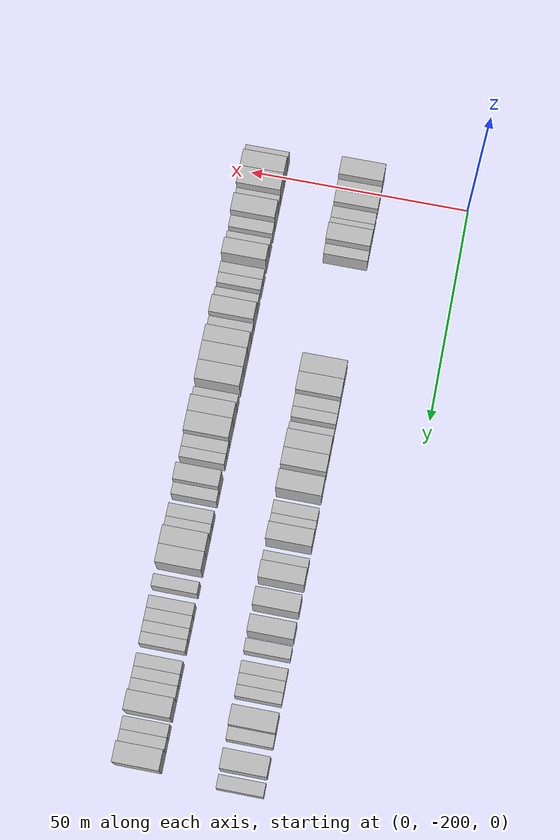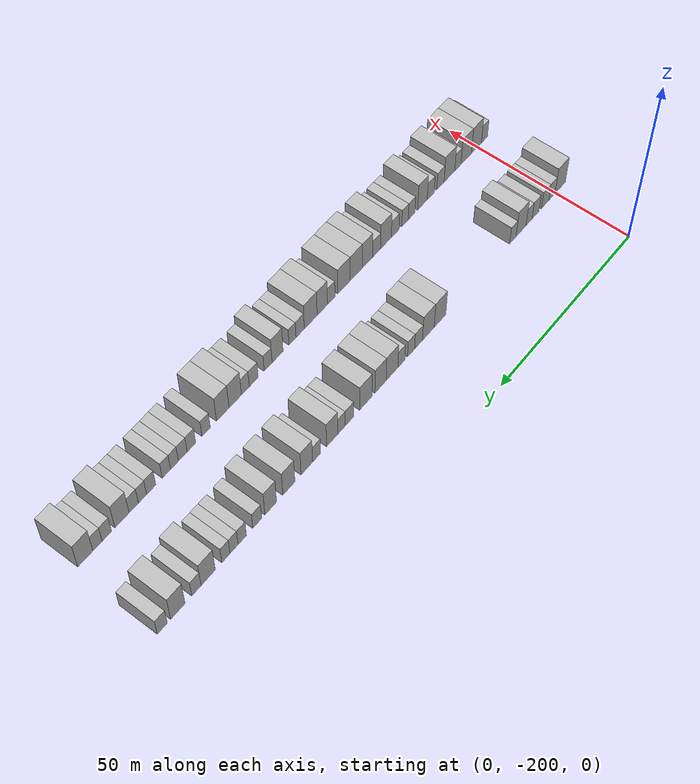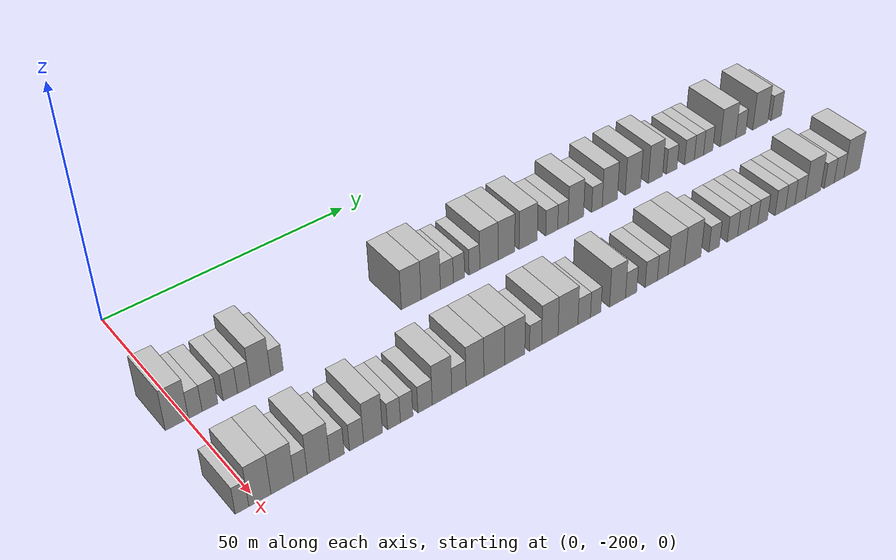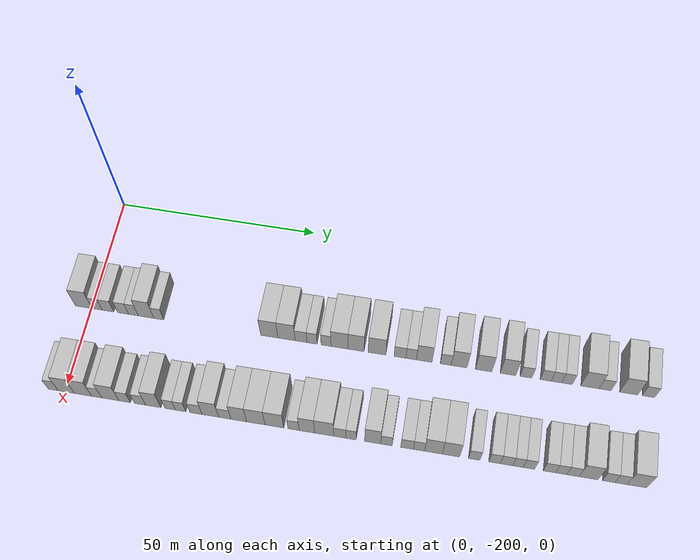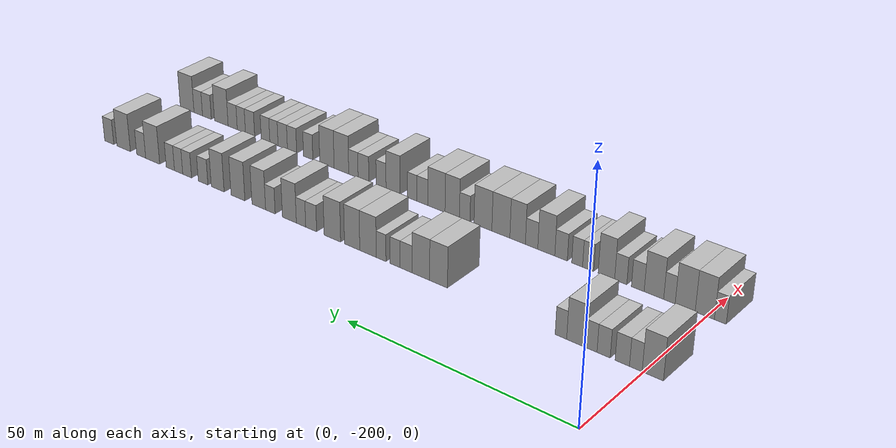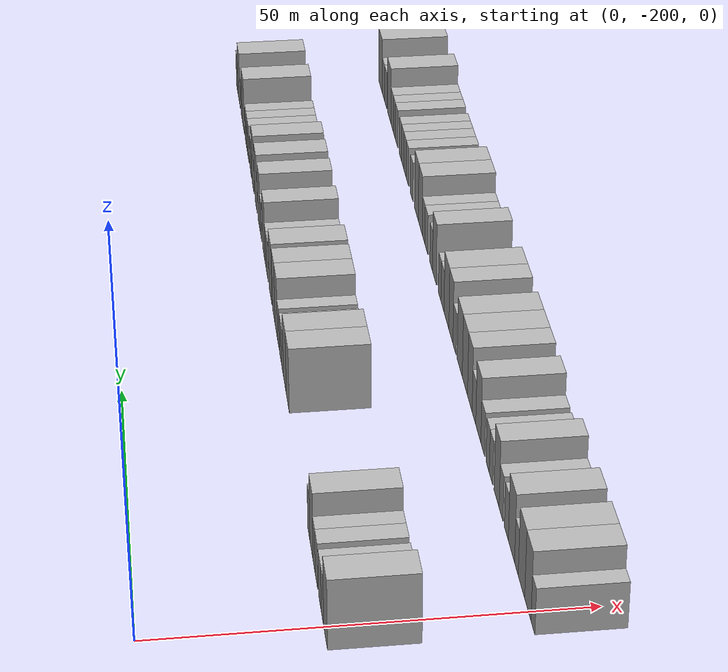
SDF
<sdf version="1.6">
 <world name="default">
  <model name="building_1">
   <static>1</static>
   <pose>25.0000 -201.8776 0 0.000000 0.000000 0.000000</pose>
   <link name="link">
    <pose>0 0 4.50 0 0 0</pose>
    <collision name="collision"><geometry><box><size>10.0000 4.2448 9.0000</size></box></geometry></collision>
    <visual name="visual">
     <cast_shadows>0</cast_shadows>
     <geometry><box><size>10.0000 4.2448 9.0000</size></box></geometry>
     <material>
      <script>
       <uri>model://HANNAS_wall/materials/scripts</uri>
       <uri>model://HANNAS_wall/materials/textures</uri>
       <name>vrc/HANNAS_wall</name>
      </script>
     </material>
    </visual>
   </link>
  </model>
  <model name="building_2">
   <static>1</static>
   <pose>25.0000 -198.4805 0 0.000000 0.000000 0.000000</pose>
   <link name="link">
    <pose>0 0 3.00 0 0 0</pose>
    <collision name="collision"><geometry><box><size>10.0000 2.5494 6.0000</size></box></geometry></collision>
    <visual name="visual">
     <cast_shadows>0</cast_shadows>
     <geometry><box><size>10.0000 2.5494 6.0000</size></box></geometry>
     <material>
      <script>
       <uri>model://HANNAS_wall/materials/scripts</uri>
       <uri>model://HANNAS_wall/materials/textures</uri>
       <name>vrc/HANNAS_wall</name>
      </script>
     </material>
    </visual>
   </link>
  </model>
  <model name="building_3">
   <static>1</static>
   <pose>25.0000 -195.7391 0 0.000000 0.000000 0.000000</pose>
   <link name="link">
    <pose>0 0 3.00 0 0 0</pose>
    <collision name="collision"><geometry><box><size>10.0000 2.9334 6.0000</size></box></geometry></collision>
    <visual name="visual">
     <cast_shadows>0</cast_shadows>
     <geometry><box><size>10.0000 2.9334 6.0000</size></box></geometry>
     <material>
      <script>
       <uri>model://HANNAS_wall/materials/scripts</uri>
       <uri>model://HANNAS_wall/materials/textures</uri>
       <name>vrc/HANNAS_wall</name>
      </script>
     </material>
    </visual>
   </link>
  </model>
  <model name="building_4">
   <static>1</static>
   <pose>25.0000 -191.9077 0 0.000000 0.000000 0.000000</pose>
   <link name="link">
    <pose>0 0 3.00 0 0 0</pose>
    <collision name="collision"><geometry><box><size>10.0000 2.7295 6.0000</size></box></geometry></collision>
    <visual name="visual">
     <cast_shadows>0</cast_shadows>
     <geometry><box><size>10.0000 2.7295 6.0000</size></box></geometry>
     <material>
      <script>
       <uri>model://HANNAS_wall/materials/scripts</uri>
       <uri>model://HANNAS_wall/materials/textures</uri>
       <name>vrc/HANNAS_wall</name>
      </script>
     </material>
    </visual>
   </link>
  </model>
  <model name="building_5">
   <static>1</static>
   <pose>25.0000 -189.3272 0 0.000000 0.000000 0.000000</pose>
   <link name="link">
    <pose>0 0 3.00 0 0 0</pose>
    <collision name="collision"><geometry><box><size>10.0000 2.4314 6.0000</size></box></geometry></collision>
    <visual name="visual">
     <cast_shadows>0</cast_shadows>
     <geometry><box><size>10.0000 2.4314 6.0000</size></box></geometry>
     <material>
      <script>
       <uri>model://HANNAS_wall/materials/scripts</uri>
       <uri>model://HANNAS_wall/materials/textures</uri>
       <name>vrc/HANNAS_wall</name>
      </script>
     </material>
    </visual>
   </link>
  </model>
  <model name="building_6">
   <static>1</static>
   <pose>25.0000 -186.1348 0 0.000000 0.000000 0.000000</pose>
   <link name="link">
    <pose>0 0 4.50 0 0 0</pose>
    <collision name="collision"><geometry><box><size>10.0000 3.9535 9.0000</size></box></geometry></collision>
    <visual name="visual">
     <cast_shadows>0</cast_shadows>
     <geometry><box><size>10.0000 3.9535 9.0000</size></box></geometry>
     <material>
      <script>
       <uri>model://HANNAS_wall/materials/scripts</uri>
       <uri>model://HANNAS_wall/materials/textures</uri>
       <name>vrc/HANNAS_wall</name>
      </script>
     </material>
    </visual>
   </link>
  </model>
  <model name="building_7">
   <static>1</static>
   <pose>25.0000 -182.9249 0 0.000000 0.000000 0.000000</pose>
   <link name="link">
    <pose>0 0 3.00 0 0 0</pose>
    <collision name="collision"><geometry><box><size>10.0000 2.4664 6.0000</size></box></geometry></collision>
    <visual name="visual">
     <cast_shadows>0</cast_shadows>
     <geometry><box><size>10.0000 2.4664 6.0000</size></box></geometry>
     <material>
      <script>
       <uri>model://HANNAS_wall/materials/scripts</uri>
       <uri>model://HANNAS_wall/materials/textures</uri>
       <name>vrc/HANNAS_wall</name>
      </script>
     </material>
    </visual>
   </link>
  </model>
  <model name="building_8">
   <static>1</static>
   <pose>25.0000 -155.2964 0 0.000000 0.000000 0.000000</pose>
   <link name="link">
    <pose>0 0 4.50 0 0 0</pose>
    <collision name="collision"><geometry><box><size>10.0000 4.2636 9.0000</size></box></geometry></collision>
    <visual name="visual">
     <cast_shadows>0</cast_shadows>
     <geometry><box><size>10.0000 4.2636 9.0000</size></box></geometry>
     <material>
      <script>
       <uri>model://HANNAS_wall/materials/scripts</uri>
       <uri>model://HANNAS_wall/materials/textures</uri>
       <name>vrc/HANNAS_wall</name>
      </script>
     </material>
    </visual>
   </link>
  </model>
  <model name="building_9">
   <static>1</static>
   <pose>25.0000 -151.0444 0 0.000000 0.000000 0.000000</pose>
   <link name="link">
    <pose>0 0 4.50 0 0 0</pose>
    <collision name="collision"><geometry><box><size>10.0000 4.2404 9.0000</size></box></geometry></collision>
    <visual name="visual">
     <cast_shadows>0</cast_shadows>
     <geometry><box><size>10.0000 4.2404 9.0000</size></box></geometry>
     <material>
      <script>
       <uri>model://HANNAS_wall/materials/scripts</uri>
       <uri>model://HANNAS_wall/materials/textures</uri>
       <name>vrc/HANNAS_wall</name>
      </script>
     </material>
    </visual>
   </link>
  </model>
  <model name="building_10">
   <static>1</static>
   <pose>25.0000 -147.4846 0 0.000000 0.000000 0.000000</pose>
   <link name="link">
    <pose>0 0 3.00 0 0 0</pose>
    <collision name="collision"><geometry><box><size>10.0000 2.8792 6.0000</size></box></geometry></collision>
    <visual name="visual">
     <cast_shadows>0</cast_shadows>
     <geometry><box><size>10.0000 2.8792 6.0000</size></box></geometry>
     <material>
      <script>
       <uri>model://HANNAS_wall/materials/scripts</uri>
       <uri>model://HANNAS_wall/materials/textures</uri>
       <name>vrc/HANNAS_wall</name>
      </script>
     </material>
    </visual>
   </link>
  </model>
  <model name="building_11">
   <static>1</static>
   <pose>25.0000 -144.7978 0 0.000000 0.000000 0.000000</pose>
   <link name="link">
    <pose>0 0 3.00 0 0 0</pose>
    <collision name="collision"><geometry><box><size>10.0000 2.4943 6.0000</size></box></geometry></collision>
    <visual name="visual">
     <cast_shadows>0</cast_shadows>
     <geometry><box><size>10.0000 2.4943 6.0000</size></box></geometry>
     <material>
      <script>
       <uri>model://HANNAS_wall/materials/scripts</uri>
       <uri>model://HANNAS_wall/materials/textures</uri>
       <name>vrc/HANNAS_wall</name>
      </script>
     </material>
    </visual>
   </link>
  </model>
  <model name="building_12">
   <static>1</static>
   <pose>25.0000 -141.3342 0 0.000000 0.000000 0.000000</pose>
   <link name="link">
    <pose>0 0 3.00 0 0 0</pose>
    <collision name="collision"><geometry><box><size>10.0000 2.4330 6.0000</size></box></geometry></collision>
    <visual name="visual">
     <cast_shadows>0</cast_shadows>
     <geometry><box><size>10.0000 2.4330 6.0000</size></box></geometry>
     <material>
      <script>
       <uri>model://HANNAS_wall/materials/scripts</uri>
       <uri>model://HANNAS_wall/materials/textures</uri>
       <name>vrc/HANNAS_wall</name>
      </script>
     </material>
    </visual>
   </link>
  </model>
  <model name="building_13">
   <static>1</static>
   <pose>25.0000 -138.0355 0 0.000000 0.000000 0.000000</pose>
   <link name="link">
    <pose>0 0 4.50 0 0 0</pose>
    <collision name="collision"><geometry><box><size>10.0000 4.1645 9.0000</size></box></geometry></collision>
    <visual name="visual">
     <cast_shadows>0</cast_shadows>
     <geometry><box><size>10.0000 4.1645 9.0000</size></box></geometry>
     <material>
      <script>
       <uri>model://HANNAS_wall/materials/scripts</uri>
       <uri>model://HANNAS_wall/materials/textures</uri>
       <name>vrc/HANNAS_wall</name>
      </script>
     </material>
    </visual>
   </link>
  </model>
  <model name="building_14">
   <static>1</static>
   <pose>25.0000 -133.9975 0 0.000000 0.000000 0.000000</pose>
   <link name="link">
    <pose>0 0 4.50 0 0 0</pose>
    <collision name="collision"><geometry><box><size>10.0000 3.9115 9.0000</size></box></geometry></collision>
    <visual name="visual">
     <cast_shadows>0</cast_shadows>
     <geometry><box><size>10.0000 3.9115 9.0000</size></box></geometry>
     <material>
      <script>
       <uri>model://HANNAS_wall/materials/scripts</uri>
       <uri>model://HANNAS_wall/materials/textures</uri>
       <name>vrc/HANNAS_wall</name>
      </script>
     </material>
    </visual>
   </link>
  </model>
  <model name="building_15">
   <static>1</static>
   <pose>25.0000 -128.8950 0 0.000000 0.000000 0.000000</pose>
   <link name="link">
    <pose>0 0 4.50 0 0 0</pose>
    <collision name="collision"><geometry><box><size>10.0000 4.2936 9.0000</size></box></geometry></collision>
    <visual name="visual">
     <cast_shadows>0</cast_shadows>
     <geometry><box><size>10.0000 4.2936 9.0000</size></box></geometry>
     <material>
      <script>
       <uri>model://HANNAS_wall/materials/scripts</uri>
       <uri>model://HANNAS_wall/materials/textures</uri>
       <name>vrc/HANNAS_wall</name>
      </script>
     </material>
    </visual>
   </link>
  </model>
  <model name="building_16">
   <static>1</static>
   <pose>25.0000 -123.3025 0 0.000000 0.000000 0.000000</pose>
   <link name="link">
    <pose>0 0 3.00 0 0 0</pose>
    <collision name="collision"><geometry><box><size>10.0000 2.8914 6.0000</size></box></geometry></collision>
    <visual name="visual">
     <cast_shadows>0</cast_shadows>
     <geometry><box><size>10.0000 2.8914 6.0000</size></box></geometry>
     <material>
      <script>
       <uri>model://HANNAS_wall/materials/scripts</uri>
       <uri>model://HANNAS_wall/materials/textures</uri>
       <name>vrc/HANNAS_wall</name>
      </script>
     </material>
    </visual>
   </link>
  </model>
  <model name="building_17">
   <static>1</static>
   <pose>25.0000 -120.5999 0 0.000000 0.000000 0.000000</pose>
   <link name="link">
    <pose>0 0 3.00 0 0 0</pose>
    <collision name="collision"><geometry><box><size>10.0000 2.5139 6.0000</size></box></geometry></collision>
    <visual name="visual">
     <cast_shadows>0</cast_shadows>
     <geometry><box><size>10.0000 2.5139 6.0000</size></box></geometry>
     <material>
      <script>
       <uri>model://HANNAS_wall/materials/scripts</uri>
       <uri>model://HANNAS_wall/materials/textures</uri>
       <name>vrc/HANNAS_wall</name>
      </script>
     </material>
    </visual>
   </link>
  </model>
  <model name="building_18">
   <static>1</static>
   <pose>25.0000 -117.4557 0 0.000000 0.000000 0.000000</pose>
   <link name="link">
    <pose>0 0 4.50 0 0 0</pose>
    <collision name="collision"><geometry><box><size>10.0000 3.7745 9.0000</size></box></geometry></collision>
    <visual name="visual">
     <cast_shadows>0</cast_shadows>
     <geometry><box><size>10.0000 3.7745 9.0000</size></box></geometry>
     <material>
      <script>
       <uri>model://HANNAS_wall/materials/scripts</uri>
       <uri>model://HANNAS_wall/materials/textures</uri>
       <name>vrc/HANNAS_wall</name>
      </script>
     </material>
    </visual>
   </link>
  </model>
  <model name="building_19">
   <static>1</static>
   <pose>25.0000 -112.2520 0 0.000000 0.000000 0.000000</pose>
   <link name="link">
    <pose>0 0 3.00 0 0 0</pose>
    <collision name="collision"><geometry><box><size>10.0000 2.6328 6.0000</size></box></geometry></collision>
    <visual name="visual">
     <cast_shadows>0</cast_shadows>
     <geometry><box><size>10.0000 2.6328 6.0000</size></box></geometry>
     <material>
      <script>
       <uri>model://HANNAS_wall/materials/scripts</uri>
       <uri>model://HANNAS_wall/materials/textures</uri>
       <name>vrc/HANNAS_wall</name>
      </script>
     </material>
    </visual>
   </link>
  </model>
  <model name="building_20">
   <static>1</static>
   <pose>25.0000 -109.0311 0 0.000000 0.000000 0.000000</pose>
   <link name="link">
    <pose>0 0 4.50 0 0 0</pose>
    <collision name="collision"><geometry><box><size>10.0000 3.8090 9.0000</size></box></geometry></collision>
    <visual name="visual">
     <cast_shadows>0</cast_shadows>
     <geometry><box><size>10.0000 3.8090 9.0000</size></box></geometry>
     <material>
      <script>
       <uri>model://HANNAS_wall/materials/scripts</uri>
       <uri>model://HANNAS_wall/materials/textures</uri>
       <name>vrc/HANNAS_wall</name>
      </script>
     </material>
    </visual>
   </link>
  </model>
  <model name="building_21">
   <static>1</static>
   <pose>25.0000 -103.1568 0 0.000000 0.000000 0.000000</pose>
   <link name="link">
    <pose>0 0 4.50 0 0 0</pose>
    <collision name="collision"><geometry><box><size>10.0000 3.9398 9.0000</size></box></geometry></collision>
    <visual name="visual">
     <cast_shadows>0</cast_shadows>
     <geometry><box><size>10.0000 3.9398 9.0000</size></box></geometry>
     <material>
      <script>
       <uri>model://HANNAS_wall/materials/scripts</uri>
       <uri>model://HANNAS_wall/materials/textures</uri>
       <name>vrc/HANNAS_wall</name>
      </script>
     </material>
    </visual>
   </link>
  </model>
  <model name="building_22">
   <static>1</static>
   <pose>25.0000 -97.3289 0 0.000000 0.000000 0.000000</pose>
   <link name="link">
    <pose>0 0 4.50 0 0 0</pose>
    <collision name="collision"><geometry><box><size>10.0000 3.7160 9.0000</size></box></geometry></collision>
    <visual name="visual">
     <cast_shadows>0</cast_shadows>
     <geometry><box><size>10.0000 3.7160 9.0000</size></box></geometry>
     <material>
      <script>
       <uri>model://HANNAS_wall/materials/scripts</uri>
       <uri>model://HANNAS_wall/materials/textures</uri>
       <name>vrc/HANNAS_wall</name>
      </script>
     </material>
    </visual>
   </link>
  </model>
  <model name="building_23">
   <static>1</static>
   <pose>25.0000 -93.0584 0 0.000000 0.000000 0.000000</pose>
   <link name="link">
    <pose>0 0 3.00 0 0 0</pose>
    <collision name="collision"><geometry><box><size>10.0000 2.8249 6.0000</size></box></geometry></collision>
    <visual name="visual">
     <cast_shadows>0</cast_shadows>
     <geometry><box><size>10.0000 2.8249 6.0000</size></box></geometry>
     <material>
      <script>
       <uri>model://HANNAS_wall/materials/scripts</uri>
       <uri>model://HANNAS_wall/materials/textures</uri>
       <name>vrc/HANNAS_wall</name>
      </script>
     </material>
    </visual>
   </link>
  </model>
  <model name="building_24">
   <static>1</static>
   <pose>25.0000 -88.3284 0 0.000000 0.000000 0.000000</pose>
   <link name="link">
    <pose>0 0 3.00 0 0 0</pose>
    <collision name="collision"><geometry><box><size>10.0000 2.6352 6.0000</size></box></geometry></collision>
    <visual name="visual">
     <cast_shadows>0</cast_shadows>
     <geometry><box><size>10.0000 2.6352 6.0000</size></box></geometry>
     <material>
      <script>
       <uri>model://HANNAS_wall/materials/scripts</uri>
       <uri>model://HANNAS_wall/materials/textures</uri>
       <name>vrc/HANNAS_wall</name>
      </script>
     </material>
    </visual>
   </link>
  </model>
  <model name="building_25">
   <static>1</static>
   <pose>25.0000 -85.7696 0 0.000000 0.000000 0.000000</pose>
   <link name="link">
    <pose>0 0 3.00 0 0 0</pose>
    <collision name="collision"><geometry><box><size>10.0000 2.4825 6.0000</size></box></geometry></collision>
    <visual name="visual">
     <cast_shadows>0</cast_shadows>
     <geometry><box><size>10.0000 2.4825 6.0000</size></box></geometry>
     <material>
      <script>
       <uri>model://HANNAS_wall/materials/scripts</uri>
       <uri>model://HANNAS_wall/materials/textures</uri>
       <name>vrc/HANNAS_wall</name>
      </script>
     </material>
    </visual>
   </link>
  </model>
  <model name="building_26">
   <static>1</static>
   <pose>25.0000 -83.2699 0 0.000000 0.000000 0.000000</pose>
   <link name="link">
    <pose>0 0 3.00 0 0 0</pose>
    <collision name="collision"><geometry><box><size>10.0000 2.5168 6.0000</size></box></geometry></collision>
    <visual name="visual">
     <cast_shadows>0</cast_shadows>
     <geometry><box><size>10.0000 2.5168 6.0000</size></box></geometry>
     <material>
      <script>
       <uri>model://HANNAS_wall/materials/scripts</uri>
       <uri>model://HANNAS_wall/materials/textures</uri>
       <name>vrc/HANNAS_wall</name>
      </script>
     </material>
    </visual>
   </link>
  </model>
  <model name="building_27">
   <static>1</static>
   <pose>25.0000 -77.8490 0 0.000000 0.000000 0.000000</pose>
   <link name="link">
    <pose>0 0 4.50 0 0 0</pose>
    <collision name="collision"><geometry><box><size>10.0000 4.3251 9.0000</size></box></geometry></collision>
    <visual name="visual">
     <cast_shadows>0</cast_shadows>
     <geometry><box><size>10.0000 4.3251 9.0000</size></box></geometry>
     <material>
      <script>
       <uri>model://HANNAS_wall/materials/scripts</uri>
       <uri>model://HANNAS_wall/materials/textures</uri>
       <name>vrc/HANNAS_wall</name>
      </script>
     </material>
    </visual>
   </link>
  </model>
  <model name="building_28">
   <static>1</static>
   <pose>25.0000 -74.2833 0 0.000000 0.000000 0.000000</pose>
   <link name="link">
    <pose>0 0 3.00 0 0 0</pose>
    <collision name="collision"><geometry><box><size>10.0000 2.8064 6.0000</size></box></geometry></collision>
    <visual name="visual">
     <cast_shadows>0</cast_shadows>
     <geometry><box><size>10.0000 2.8064 6.0000</size></box></geometry>
     <material>
      <script>
       <uri>model://HANNAS_wall/materials/scripts</uri>
       <uri>model://HANNAS_wall/materials/textures</uri>
       <name>vrc/HANNAS_wall</name>
      </script>
     </material>
    </visual>
   </link>
  </model>
  <model name="building_29">
   <static>1</static>
   <pose>25.0000 -68.7356 0 0.000000 0.000000 0.000000</pose>
   <link name="link">
    <pose>0 0 4.50 0 0 0</pose>
    <collision name="collision"><geometry><box><size>10.0000 4.2889 9.0000</size></box></geometry></collision>
    <visual name="visual">
     <cast_shadows>0</cast_shadows>
     <geometry><box><size>10.0000 4.2889 9.0000</size></box></geometry>
     <material>
      <script>
       <uri>model://HANNAS_wall/materials/scripts</uri>
       <uri>model://HANNAS_wall/materials/textures</uri>
       <name>vrc/HANNAS_wall</name>
      </script>
     </material>
    </visual>
   </link>
  </model>
  <model name="building_30">
   <static>1</static>
   <pose>25.0000 -64.1257 0 0.000000 0.000000 0.000000</pose>
   <link name="link">
    <pose>0 0 3.00 0 0 0</pose>
    <collision name="collision"><geometry><box><size>10.0000 2.9309 6.0000</size></box></geometry></collision>
    <visual name="visual">
     <cast_shadows>0</cast_shadows>
     <geometry><box><size>10.0000 2.9309 6.0000</size></box></geometry>
     <material>
      <script>
       <uri>model://HANNAS_wall/materials/scripts</uri>
       <uri>model://HANNAS_wall/materials/textures</uri>
       <name>vrc/HANNAS_wall</name>
      </script>
     </material>
    </visual>
   </link>
  </model>
  <model name="building_102">
   <static>1</static>
   <pose>47.0000 -202.7905 0 0.000000 0.000000 0.000000</pose>
   <link name="link">
    <pose>0 0 3.00 0 0 0</pose>
    <collision name="collision"><geometry><box><size>10.0000 2.4190 6.0000</size></box></geometry></collision>
    <visual name="visual">
     <cast_shadows>0</cast_shadows>
     <geometry><box><size>10.0000 2.4190 6.0000</size></box></geometry>
     <material>
      <script>
       <uri>model://HANNAS_wall/materials/scripts</uri>
       <uri>model://HANNAS_wall/materials/textures</uri>
       <name>vrc/HANNAS_wall</name>
      </script>
     </material>
    </visual>
   </link>
  </model>
  <model name="building_103">
   <static>1</static>
   <pose>47.0000 -199.5905 0 0.000000 0.000000 0.000000</pose>
   <link name="link">
    <pose>0 0 4.50 0 0 0</pose>
    <collision name="collision"><geometry><box><size>10.0000 3.9810 9.0000</size></box></geometry></collision>
    <visual name="visual">
     <cast_shadows>0</cast_shadows>
     <geometry><box><size>10.0000 3.9810 9.0000</size></box></geometry>
     <material>
      <script>
       <uri>model://HANNAS_wall/materials/scripts</uri>
       <uri>model://HANNAS_wall/materials/textures</uri>
       <name>vrc/HANNAS_wall</name>
      </script>
     </material>
    </visual>
   </link>
  </model>
  <model name="building_104">
   <static>1</static>
   <pose>47.0000 -195.5062 0 0.000000 0.000000 0.000000</pose>
   <link name="link">
    <pose>0 0 4.50 0 0 0</pose>
    <collision name="collision"><geometry><box><size>10.0000 4.1878 9.0000</size></box></geometry></collision>
    <visual name="visual">
     <cast_shadows>0</cast_shadows>
     <geometry><box><size>10.0000 4.1878 9.0000</size></box></geometry>
     <material>
      <script>
       <uri>model://HANNAS_wall/materials/scripts</uri>
       <uri>model://HANNAS_wall/materials/textures</uri>
       <name>vrc/HANNAS_wall</name>
      </script>
     </material>
    </visual>
   </link>
  </model>
  <model name="building_105">
   <static>1</static>
   <pose>47.0000 -192.1916 0 0.000000 0.000000 0.000000</pose>
   <link name="link">
    <pose>0 0 3.00 0 0 0</pose>
    <collision name="collision"><geometry><box><size>10.0000 2.4413 6.0000</size></box></geometry></collision>
    <visual name="visual">
     <cast_shadows>0</cast_shadows>
     <geometry><box><size>10.0000 2.4413 6.0000</size></box></geometry>
     <material>
      <script>
       <uri>model://HANNAS_wall/materials/scripts</uri>
       <uri>model://HANNAS_wall/materials/textures</uri>
       <name>vrc/HANNAS_wall</name>
      </script>
     </material>
    </visual>
   </link>
  </model>
  <model name="building_106">
   <static>1</static>
   <pose>47.0000 -188.8777 0 0.000000 0.000000 0.000000</pose>
   <link name="link">
    <pose>0 0 4.50 0 0 0</pose>
    <collision name="collision"><geometry><box><size>10.0000 4.1865 9.0000</size></box></geometry></collision>
    <visual name="visual">
     <cast_shadows>0</cast_shadows>
     <geometry><box><size>10.0000 4.1865 9.0000</size></box></geometry>
     <material>
      <script>
       <uri>model://HANNAS_wall/materials/scripts</uri>
       <uri>model://HANNAS_wall/materials/textures</uri>
       <name>vrc/HANNAS_wall</name>
      </script>
     </material>
    </visual>
   </link>
  </model>
  <model name="building_107">
   <static>1</static>
   <pose>47.0000 -185.3934 0 0.000000 0.000000 0.000000</pose>
   <link name="link">
    <pose>0 0 3.00 0 0 0</pose>
    <collision name="collision"><geometry><box><size>10.0000 2.7820 6.0000</size></box></geometry></collision>
    <visual name="visual">
     <cast_shadows>0</cast_shadows>
     <geometry><box><size>10.0000 2.7820 6.0000</size></box></geometry>
     <material>
      <script>
       <uri>model://HANNAS_wall/materials/scripts</uri>
       <uri>model://HANNAS_wall/materials/textures</uri>
       <name>vrc/HANNAS_wall</name>
      </script>
     </material>
    </visual>
   </link>
  </model>
  <model name="building_108">
   <static>1</static>
   <pose>47.0000 -181.6596 0 0.000000 0.000000 0.000000</pose>
   <link name="link">
    <pose>0 0 3.00 0 0 0</pose>
    <collision name="collision"><geometry><box><size>10.0000 2.6855 6.0000</size></box></geometry></collision>
    <visual name="visual">
     <cast_shadows>0</cast_shadows>
     <geometry><box><size>10.0000 2.6855 6.0000</size></box></geometry>
     <material>
      <script>
       <uri>model://HANNAS_wall/materials/scripts</uri>
       <uri>model://HANNAS_wall/materials/textures</uri>
       <name>vrc/HANNAS_wall</name>
      </script>
     </material>
    </visual>
   </link>
  </model>
  <model name="building_109">
   <static>1</static>
   <pose>47.0000 -178.4785 0 0.000000 0.000000 0.000000</pose>
   <link name="link">
    <pose>0 0 4.50 0 0 0</pose>
    <collision name="collision"><geometry><box><size>10.0000 3.6767 9.0000</size></box></geometry></collision>
    <visual name="visual">
     <cast_shadows>0</cast_shadows>
     <geometry><box><size>10.0000 3.6767 9.0000</size></box></geometry>
     <material>
      <script>
       <uri>model://HANNAS_wall/materials/scripts</uri>
       <uri>model://HANNAS_wall/materials/textures</uri>
       <name>vrc/HANNAS_wall</name>
      </script>
     </material>
    </visual>
   </link>
  </model>
  <model name="building_110">
   <static>1</static>
   <pose>47.0000 -174.3779 0 0.000000 0.000000 0.000000</pose>
   <link name="link">
    <pose>0 0 3.00 0 0 0</pose>
    <collision name="collision"><geometry><box><size>10.0000 2.5247 6.0000</size></box></geometry></collision>
    <visual name="visual">
     <cast_shadows>0</cast_shadows>
     <geometry><box><size>10.0000 2.5247 6.0000</size></box></geometry>
     <material>
      <script>
       <uri>model://HANNAS_wall/materials/scripts</uri>
       <uri>model://HANNAS_wall/materials/textures</uri>
       <name>vrc/HANNAS_wall</name>
      </script>
     </material>
    </visual>
   </link>
  </model>
  <model name="building_111">
   <static>1</static>
   <pose>47.0000 -171.8724 0 0.000000 0.000000 0.000000</pose>
   <link name="link">
    <pose>0 0 3.00 0 0 0</pose>
    <collision name="collision"><geometry><box><size>10.0000 2.4861 6.0000</size></box></geometry></collision>
    <visual name="visual">
     <cast_shadows>0</cast_shadows>
     <geometry><box><size>10.0000 2.4861 6.0000</size></box></geometry>
     <material>
      <script>
       <uri>model://HANNAS_wall/materials/scripts</uri>
       <uri>model://HANNAS_wall/materials/textures</uri>
       <name>vrc/HANNAS_wall</name>
      </script>
     </material>
    </visual>
   </link>
  </model>
  <model name="building_112">
   <static>1</static>
   <pose>47.0000 -168.1821 0 0.000000 0.000000 0.000000</pose>
   <link name="link">
    <pose>0 0 3.00 0 0 0</pose>
    <collision name="collision"><geometry><box><size>10.0000 2.8946 6.0000</size></box></geometry></collision>
    <visual name="visual">
     <cast_shadows>0</cast_shadows>
     <geometry><box><size>10.0000 2.8946 6.0000</size></box></geometry>
     <material>
      <script>
       <uri>model://HANNAS_wall/materials/scripts</uri>
       <uri>model://HANNAS_wall/materials/textures</uri>
       <name>vrc/HANNAS_wall</name>
      </script>
     </material>
    </visual>
   </link>
  </model>
  <model name="building_113">
   <static>1</static>
   <pose>47.0000 -164.7378 0 0.000000 0.000000 0.000000</pose>
   <link name="link">
    <pose>0 0 4.50 0 0 0</pose>
    <collision name="collision"><geometry><box><size>10.0000 3.9939 9.0000</size></box></geometry></collision>
    <visual name="visual">
     <cast_shadows>0</cast_shadows>
     <geometry><box><size>10.0000 3.9939 9.0000</size></box></geometry>
     <material>
      <script>
       <uri>model://HANNAS_wall/materials/scripts</uri>
       <uri>model://HANNAS_wall/materials/textures</uri>
       <name>vrc/HANNAS_wall</name>
      </script>
     </material>
    </visual>
   </link>
  </model>
  <model name="building_114">
   <static>1</static>
   <pose>47.0000 -161.2684 0 0.000000 0.000000 0.000000</pose>
   <link name="link">
    <pose>0 0 3.00 0 0 0</pose>
    <collision name="collision"><geometry><box><size>10.0000 2.9449 6.0000</size></box></geometry></collision>
    <visual name="visual">
     <cast_shadows>0</cast_shadows>
     <geometry><box><size>10.0000 2.9449 6.0000</size></box></geometry>
     <material>
      <script>
       <uri>model://HANNAS_wall/materials/scripts</uri>
       <uri>model://HANNAS_wall/materials/textures</uri>
       <name>vrc/HANNAS_wall</name>
      </script>
     </material>
    </visual>
   </link>
  </model>
  <model name="building_115">
   <static>1</static>
   <pose>47.0000 -157.9337 0 0.000000 0.000000 0.000000</pose>
   <link name="link">
    <pose>0 0 4.50 0 0 0</pose>
    <collision name="collision"><geometry><box><size>10.0000 3.7247 9.0000</size></box></geometry></collision>
    <visual name="visual">
     <cast_shadows>0</cast_shadows>
     <geometry><box><size>10.0000 3.7247 9.0000</size></box></geometry>
     <material>
      <script>
       <uri>model://HANNAS_wall/materials/scripts</uri>
       <uri>model://HANNAS_wall/materials/textures</uri>
       <name>vrc/HANNAS_wall</name>
      </script>
     </material>
    </visual>
   </link>
  </model>
  <model name="building_116">
   <static>1</static>
   <pose>47.0000 -153.8785 0 0.000000 0.000000 0.000000</pose>
   <link name="link">
    <pose>0 0 4.50 0 0 0</pose>
    <collision name="collision"><geometry><box><size>10.0000 4.3856 9.0000</size></box></geometry></collision>
    <visual name="visual">
     <cast_shadows>0</cast_shadows>
     <geometry><box><size>10.0000 4.3856 9.0000</size></box></geometry>
     <material>
      <script>
       <uri>model://HANNAS_wall/materials/scripts</uri>
       <uri>model://HANNAS_wall/materials/textures</uri>
       <name>vrc/HANNAS_wall</name>
      </script>
     </material>
    </visual>
   </link>
  </model>
  <model name="building_117">
   <static>1</static>
   <pose>47.0000 -149.4785 0 0.000000 0.000000 0.000000</pose>
   <link name="link">
    <pose>0 0 4.50 0 0 0</pose>
    <collision name="collision"><geometry><box><size>10.0000 4.4143 9.0000</size></box></geometry></collision>
    <visual name="visual">
     <cast_shadows>0</cast_shadows>
     <geometry><box><size>10.0000 4.4143 9.0000</size></box></geometry>
     <material>
      <script>
       <uri>model://HANNAS_wall/materials/scripts</uri>
       <uri>model://HANNAS_wall/materials/textures</uri>
       <name>vrc/HANNAS_wall</name>
      </script>
     </material>
    </visual>
   </link>
  </model>
  <model name="building_118">
   <static>1</static>
   <pose>47.0000 -144.9439 0 0.000000 0.000000 0.000000</pose>
   <link name="link">
    <pose>0 0 3.00 0 0 0</pose>
    <collision name="collision"><geometry><box><size>10.0000 2.6548 6.0000</size></box></geometry></collision>
    <visual name="visual">
     <cast_shadows>0</cast_shadows>
     <geometry><box><size>10.0000 2.6548 6.0000</size></box></geometry>
     <material>
      <script>
       <uri>model://HANNAS_wall/materials/scripts</uri>
       <uri>model://HANNAS_wall/materials/textures</uri>
       <name>vrc/HANNAS_wall</name>
      </script>
     </material>
    </visual>
   </link>
  </model>
  <model name="building_119">
   <static>1</static>
   <pose>47.0000 -141.7944 0 0.000000 0.000000 0.000000</pose>
   <link name="link">
    <pose>0 0 4.50 0 0 0</pose>
    <collision name="collision"><geometry><box><size>10.0000 3.6442 9.0000</size></box></geometry></collision>
    <visual name="visual">
     <cast_shadows>0</cast_shadows>
     <geometry><box><size>10.0000 3.6442 9.0000</size></box></geometry>
     <material>
      <script>
       <uri>model://HANNAS_wall/materials/scripts</uri>
       <uri>model://HANNAS_wall/materials/textures</uri>
       <name>vrc/HANNAS_wall</name>
      </script>
     </material>
    </visual>
   </link>
  </model>
  <model name="building_120">
   <static>1</static>
   <pose>47.0000 -137.7408 0 0.000000 0.000000 0.000000</pose>
   <link name="link">
    <pose>0 0 4.50 0 0 0</pose>
    <collision name="collision"><geometry><box><size>10.0000 4.4630 9.0000</size></box></geometry></collision>
    <visual name="visual">
     <cast_shadows>0</cast_shadows>
     <geometry><box><size>10.0000 4.4630 9.0000</size></box></geometry>
     <material>
      <script>
       <uri>model://HANNAS_wall/materials/scripts</uri>
       <uri>model://HANNAS_wall/materials/textures</uri>
       <name>vrc/HANNAS_wall</name>
      </script>
     </material>
    </visual>
   </link>
  </model>
  <model name="building_121">
   <static>1</static>
   <pose>47.0000 -134.0782 0 0.000000 0.000000 0.000000</pose>
   <link name="link">
    <pose>0 0 3.00 0 0 0</pose>
    <collision name="collision"><geometry><box><size>10.0000 2.8621 6.0000</size></box></geometry></collision>
    <visual name="visual">
     <cast_shadows>0</cast_shadows>
     <geometry><box><size>10.0000 2.8621 6.0000</size></box></geometry>
     <material>
      <script>
       <uri>model://HANNAS_wall/materials/scripts</uri>
       <uri>model://HANNAS_wall/materials/textures</uri>
       <name>vrc/HANNAS_wall</name>
      </script>
     </material>
    </visual>
   </link>
  </model>
  <model name="building_122">
   <static>1</static>
   <pose>47.0000 -131.4467 0 0.000000 0.000000 0.000000</pose>
   <link name="link">
    <pose>0 0 3.00 0 0 0</pose>
    <collision name="collision"><geometry><box><size>10.0000 2.4008 6.0000</size></box></geometry></collision>
    <visual name="visual">
     <cast_shadows>0</cast_shadows>
     <geometry><box><size>10.0000 2.4008 6.0000</size></box></geometry>
     <material>
      <script>
       <uri>model://HANNAS_wall/materials/scripts</uri>
       <uri>model://HANNAS_wall/materials/textures</uri>
       <name>vrc/HANNAS_wall</name>
      </script>
     </material>
    </visual>
   </link>
  </model>
  <model name="building_123">
   <static>1</static>
   <pose>47.0000 -126.3757 0 0.000000 0.000000 0.000000</pose>
   <link name="link">
    <pose>0 0 4.50 0 0 0</pose>
    <collision name="collision"><geometry><box><size>10.0000 3.7413 9.0000</size></box></geometry></collision>
    <visual name="visual">
     <cast_shadows>0</cast_shadows>
     <geometry><box><size>10.0000 3.7413 9.0000</size></box></geometry>
     <material>
      <script>
       <uri>model://HANNAS_wall/materials/scripts</uri>
       <uri>model://HANNAS_wall/materials/textures</uri>
       <name>vrc/HANNAS_wall</name>
      </script>
     </material>
    </visual>
   </link>
  </model>
  <model name="building_124">
   <static>1</static>
   <pose>47.0000 -123.1746 0 0.000000 0.000000 0.000000</pose>
   <link name="link">
    <pose>0 0 3.00 0 0 0</pose>
    <collision name="collision"><geometry><box><size>10.0000 2.6609 6.0000</size></box></geometry></collision>
    <visual name="visual">
     <cast_shadows>0</cast_shadows>
     <geometry><box><size>10.0000 2.6609 6.0000</size></box></geometry>
     <material>
      <script>
       <uri>model://HANNAS_wall/materials/scripts</uri>
       <uri>model://HANNAS_wall/materials/textures</uri>
       <name>vrc/HANNAS_wall</name>
      </script>
     </material>
    </visual>
   </link>
  </model>
  <model name="building_125">
   <static>1</static>
   <pose>47.0000 -118.3722 0 0.000000 0.000000 0.000000</pose>
   <link name="link">
    <pose>0 0 3.00 0 0 0</pose>
    <collision name="collision"><geometry><box><size>10.0000 2.9439 6.0000</size></box></geometry></collision>
    <visual name="visual">
     <cast_shadows>0</cast_shadows>
     <geometry><box><size>10.0000 2.9439 6.0000</size></box></geometry>
     <material>
      <script>
       <uri>model://HANNAS_wall/materials/scripts</uri>
       <uri>model://HANNAS_wall/materials/textures</uri>
       <name>vrc/HANNAS_wall</name>
      </script>
     </material>
    </visual>
   </link>
  </model>
  <model name="building_126">
   <static>1</static>
   <pose>47.0000 -115.6060 0 0.000000 0.000000 0.000000</pose>
   <link name="link">
    <pose>0 0 3.00 0 0 0</pose>
    <collision name="collision"><geometry><box><size>10.0000 2.5885 6.0000</size></box></geometry></collision>
    <visual name="visual">
     <cast_shadows>0</cast_shadows>
     <geometry><box><size>10.0000 2.5885 6.0000</size></box></geometry>
     <material>
      <script>
       <uri>model://HANNAS_wall/materials/scripts</uri>
       <uri>model://HANNAS_wall/materials/textures</uri>
       <name>vrc/HANNAS_wall</name>
      </script>
     </material>
    </visual>
   </link>
  </model>
  <model name="building_127">
   <static>1</static>
   <pose>47.0000 -112.2781 0 0.000000 0.000000 0.000000</pose>
   <link name="link">
    <pose>0 0 4.50 0 0 0</pose>
    <collision name="collision"><geometry><box><size>10.0000 4.0671 9.0000</size></box></geometry></collision>
    <visual name="visual">
     <cast_shadows>0</cast_shadows>
     <geometry><box><size>10.0000 4.0671 9.0000</size></box></geometry>
     <material>
      <script>
       <uri>model://HANNAS_wall/materials/scripts</uri>
       <uri>model://HANNAS_wall/materials/textures</uri>
       <name>vrc/HANNAS_wall</name>
      </script>
     </material>
    </visual>
   </link>
  </model>
  <model name="building_128">
   <static>1</static>
   <pose>47.0000 -108.2146 0 0.000000 0.000000 0.000000</pose>
   <link name="link">
    <pose>0 0 4.50 0 0 0</pose>
    <collision name="collision"><geometry><box><size>10.0000 4.0600 9.0000</size></box></geometry></collision>
    <visual name="visual">
     <cast_shadows>0</cast_shadows>
     <geometry><box><size>10.0000 4.0600 9.0000</size></box></geometry>
     <material>
      <script>
       <uri>model://HANNAS_wall/materials/scripts</uri>
       <uri>model://HANNAS_wall/materials/textures</uri>
       <name>vrc/HANNAS_wall</name>
      </script>
     </material>
    </visual>
   </link>
  </model>
  <model name="building_129">
   <static>1</static>
   <pose>47.0000 -102.8450 0 0.000000 0.000000 0.000000</pose>
   <link name="link">
    <pose>0 0 3.00 0 0 0</pose>
    <collision name="collision"><geometry><box><size>10.0000 2.6792 6.0000</size></box></geometry></collision>
    <visual name="visual">
     <cast_shadows>0</cast_shadows>
     <geometry><box><size>10.0000 2.6792 6.0000</size></box></geometry>
     <material>
      <script>
       <uri>model://HANNAS_wall/materials/scripts</uri>
       <uri>model://HANNAS_wall/materials/textures</uri>
       <name>vrc/HANNAS_wall</name>
      </script>
     </material>
    </visual>
   </link>
  </model>
  <model name="building_130">
   <static>1</static>
   <pose>47.0000 -98.1568 0 0.000000 0.000000 0.000000</pose>
   <link name="link">
    <pose>0 0 3.00 0 0 0</pose>
    <collision name="collision"><geometry><box><size>10.0000 2.6973 6.0000</size></box></geometry></collision>
    <visual name="visual">
     <cast_shadows>0</cast_shadows>
     <geometry><box><size>10.0000 2.6973 6.0000</size></box></geometry>
     <material>
      <script>
       <uri>model://HANNAS_wall/materials/scripts</uri>
       <uri>model://HANNAS_wall/materials/textures</uri>
       <name>vrc/HANNAS_wall</name>
      </script>
     </material>
    </visual>
   </link>
  </model>
  <model name="building_131">
   <static>1</static>
   <pose>47.0000 -95.4296 0 0.000000 0.000000 0.000000</pose>
   <link name="link">
    <pose>0 0 3.00 0 0 0</pose>
    <collision name="collision"><geometry><box><size>10.0000 2.7569 6.0000</size></box></geometry></collision>
    <visual name="visual">
     <cast_shadows>0</cast_shadows>
     <geometry><box><size>10.0000 2.7569 6.0000</size></box></geometry>
     <material>
      <script>
       <uri>model://HANNAS_wall/materials/scripts</uri>
       <uri>model://HANNAS_wall/materials/textures</uri>
       <name>vrc/HANNAS_wall</name>
      </script>
     </material>
    </visual>
   </link>
  </model>
  <model name="building_132">
   <static>1</static>
   <pose>47.0000 -92.8270 0 0.000000 0.000000 0.000000</pose>
   <link name="link">
    <pose>0 0 3.00 0 0 0</pose>
    <collision name="collision"><geometry><box><size>10.0000 2.4484 6.0000</size></box></geometry></collision>
    <visual name="visual">
     <cast_shadows>0</cast_shadows>
     <geometry><box><size>10.0000 2.4484 6.0000</size></box></geometry>
     <material>
      <script>
       <uri>model://HANNAS_wall/materials/scripts</uri>
       <uri>model://HANNAS_wall/materials/textures</uri>
       <name>vrc/HANNAS_wall</name>
      </script>
     </material>
    </visual>
   </link>
  </model>
  <model name="building_133">
   <static>1</static>
   <pose>47.0000 -90.3139 0 0.000000 0.000000 0.000000</pose>
   <link name="link">
    <pose>0 0 3.00 0 0 0</pose>
    <collision name="collision"><geometry><box><size>10.0000 2.5778 6.0000</size></box></geometry></collision>
    <visual name="visual">
     <cast_shadows>0</cast_shadows>
     <geometry><box><size>10.0000 2.5778 6.0000</size></box></geometry>
     <material>
      <script>
       <uri>model://HANNAS_wall/materials/scripts</uri>
       <uri>model://HANNAS_wall/materials/textures</uri>
       <name>vrc/HANNAS_wall</name>
      </script>
     </material>
    </visual>
   </link>
  </model>
  <model name="building_134">
   <static>1</static>
   <pose>47.0000 -85.6206 0 0.000000 0.000000 0.000000</pose>
   <link name="link">
    <pose>0 0 3.00 0 0 0</pose>
    <collision name="collision"><geometry><box><size>10.0000 2.8088 6.0000</size></box></geometry></collision>
    <visual name="visual">
     <cast_shadows>0</cast_shadows>
     <geometry><box><size>10.0000 2.8088 6.0000</size></box></geometry>
     <material>
      <script>
       <uri>model://HANNAS_wall/materials/scripts</uri>
       <uri>model://HANNAS_wall/materials/textures</uri>
       <name>vrc/HANNAS_wall</name>
      </script>
     </material>
    </visual>
   </link>
  </model>
  <model name="building_135">
   <static>1</static>
   <pose>47.0000 -82.9614 0 0.000000 0.000000 0.000000</pose>
   <link name="link">
    <pose>0 0 3.00 0 0 0</pose>
    <collision name="collision"><geometry><box><size>10.0000 2.5098 6.0000</size></box></geometry></collision>
    <visual name="visual">
     <cast_shadows>0</cast_shadows>
     <geometry><box><size>10.0000 2.5098 6.0000</size></box></geometry>
     <material>
      <script>
       <uri>model://HANNAS_wall/materials/scripts</uri>
       <uri>model://HANNAS_wall/materials/textures</uri>
       <name>vrc/HANNAS_wall</name>
      </script>
     </material>
    </visual>
   </link>
  </model>
  <model name="building_136">
   <static>1</static>
   <pose>47.0000 -80.2957 0 0.000000 0.000000 0.000000</pose>
   <link name="link">
    <pose>0 0 3.00 0 0 0</pose>
    <collision name="collision"><geometry><box><size>10.0000 2.8215 6.0000</size></box></geometry></collision>
    <visual name="visual">
     <cast_shadows>0</cast_shadows>
     <geometry><box><size>10.0000 2.8215 6.0000</size></box></geometry>
     <material>
      <script>
       <uri>model://HANNAS_wall/materials/scripts</uri>
       <uri>model://HANNAS_wall/materials/textures</uri>
       <name>vrc/HANNAS_wall</name>
      </script>
     </material>
    </visual>
   </link>
  </model>
  <model name="building_137">
   <static>1</static>
   <pose>47.0000 -76.7526 0 0.000000 0.000000 0.000000</pose>
   <link name="link">
    <pose>0 0 4.50 0 0 0</pose>
    <collision name="collision"><geometry><box><size>10.0000 4.2647 9.0000</size></box></geometry></collision>
    <visual name="visual">
     <cast_shadows>0</cast_shadows>
     <geometry><box><size>10.0000 4.2647 9.0000</size></box></geometry>
     <material>
      <script>
       <uri>model://HANNAS_wall/materials/scripts</uri>
       <uri>model://HANNAS_wall/materials/textures</uri>
       <name>vrc/HANNAS_wall</name>
      </script>
     </material>
    </visual>
   </link>
  </model>
  <model name="building_138">
   <static>1</static>
   <pose>47.0000 -72.2223 0 0.000000 0.000000 0.000000</pose>
   <link name="link">
    <pose>0 0 3.00 0 0 0</pose>
    <collision name="collision"><geometry><box><size>10.0000 2.7960 6.0000</size></box></geometry></collision>
    <visual name="visual">
     <cast_shadows>0</cast_shadows>
     <geometry><box><size>10.0000 2.7960 6.0000</size></box></geometry>
     <material>
      <script>
       <uri>model://HANNAS_wall/materials/scripts</uri>
       <uri>model://HANNAS_wall/materials/textures</uri>
       <name>vrc/HANNAS_wall</name>
      </script>
     </material>
    </visual>
   </link>
  </model>
  <model name="building_139">
   <static>1</static>
   <pose>47.0000 -69.4648 0 0.000000 0.000000 0.000000</pose>
   <link name="link">
    <pose>0 0 3.00 0 0 0</pose>
    <collision name="collision"><geometry><box><size>10.0000 2.7191 6.0000</size></box></geometry></collision>
    <visual name="visual">
     <cast_shadows>0</cast_shadows>
     <geometry><box><size>10.0000 2.7191 6.0000</size></box></geometry>
     <material>
      <script>
       <uri>model://HANNAS_wall/materials/scripts</uri>
       <uri>model://HANNAS_wall/materials/textures</uri>
       <name>vrc/HANNAS_wall</name>
      </script>
     </material>
    </visual>
   </link>
  </model>
  <model name="building_140">
   <static>1</static>
   <pose>47.0000 -65.8894 0 0.000000 0.000000 0.000000</pose>
   <link name="link">
    <pose>0 0 4.50 0 0 0</pose>
    <collision name="collision"><geometry><box><size>10.0000 4.4316 9.0000</size></box></geometry></collision>
    <visual name="visual">
     <cast_shadows>0</cast_shadows>
     <geometry><box><size>10.0000 4.4316 9.0000</size></box></geometry>
     <material>
      <script>
       <uri>model://HANNAS_wall/materials/scripts</uri>
       <uri>model://HANNAS_wall/materials/textures</uri>
       <name>vrc/HANNAS_wall</name>
      </script>
     </material>
    </visual>
   </link>
  </model>
 </world>
</sdf>
